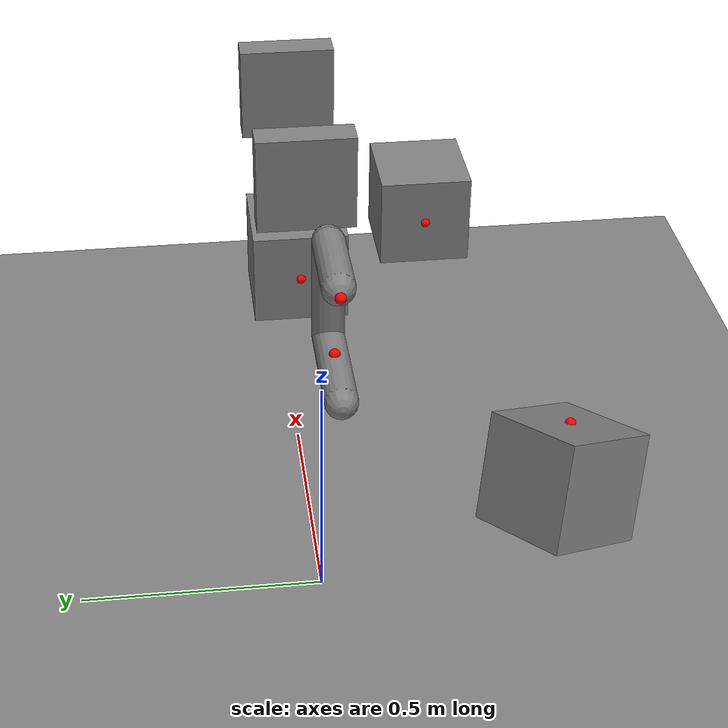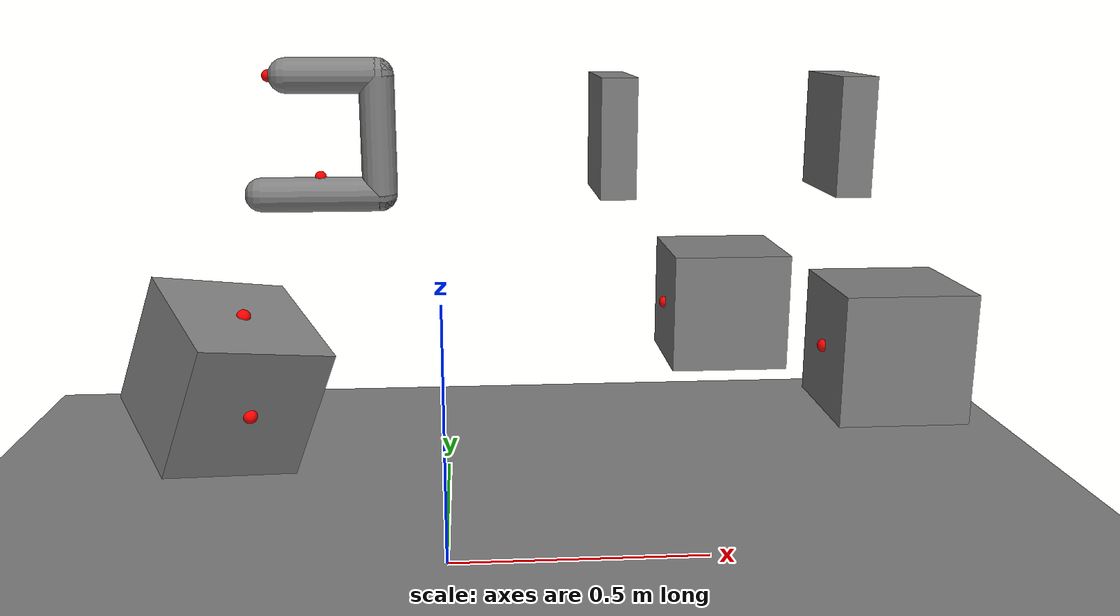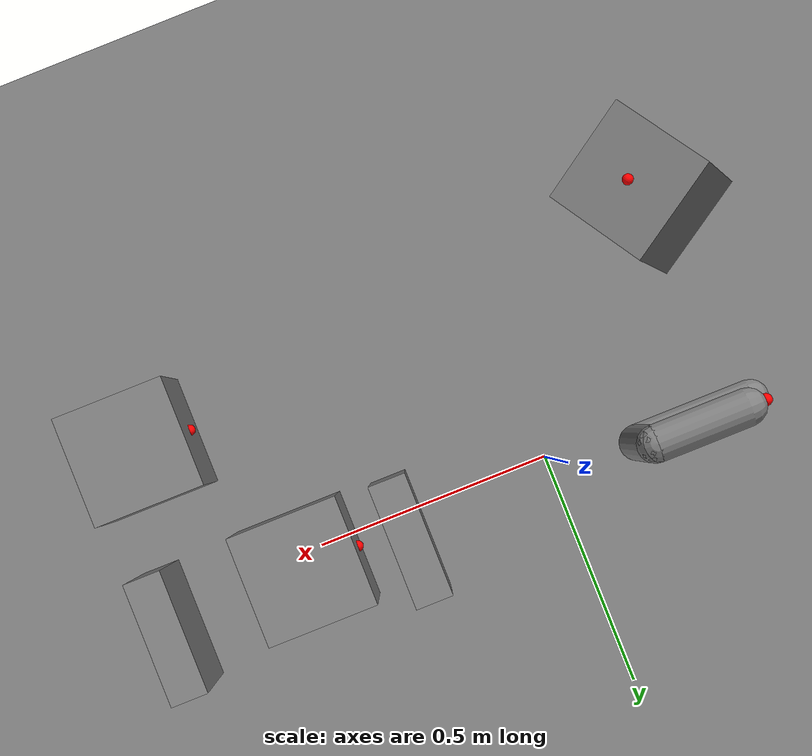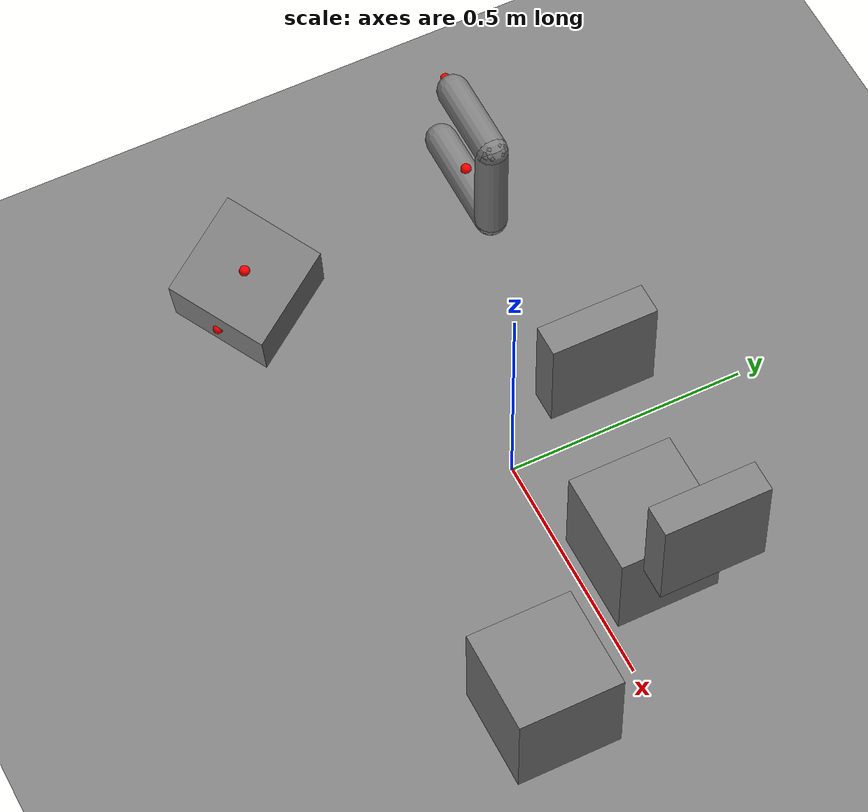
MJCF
<mujoco>
  <option>
    <flag sleep="enable"/>
  </option>

  <worldbody>
    <light pos="0 -1 4"/>
    <geom type="plane" size="1.5 1.5 .01"/>

    <body pos=".3 0 .8">
      <joint name="1" axis="1 0 0" damping=".1"/>
      <geom type="box" size=".03 .1 .1"/>
    </body>

    <body pos=".7 0 .8">
      <joint name="2" axis="1 0 0" damping=".1"/>
      <geom type="box" size=".03 .1 .1"/>
    </body>

    <body pos=".5 0 .5">
      <geom type="box" size=".1 .1 .1"/>
      <site name="1" pos="-.1 0 0" size=".01" rgba="1 0 0 1"/>
    </body>

    <body pos="-.3 -.4 .5" euler="10 20 30">
      <freejoint/>
      <geom type="box" size=".1 .1 .1"/>
      <site name="2" pos="0 0 .1" size=".01" rgba="1 0 0 1" euler="0 -90 0"/>
      <site name="3" pos="0 -.1 0" size=".01" rgba="1 0 0 1" euler="0 0 -90"/>
    </body>

    <body pos=".7 -.3 .5">
      <freejoint/>
      <geom type="box" size=".1 .1 .1"/>
      <site name="4" pos="-.1 0 0" size=".01" rgba="1 0 0 1"/>
    </body>

    <body pos="-.3 0 .7">
      <joint axis="0 1 0" springdamper=".03 1"/>
      <geom type="capsule" size=".03" fromto="0 0 0 .2 0 0"/>
      <site name="5" pos=".1 0 .03" size=".01" rgba="1 0 0 1"/>
      <body pos=".2 0 0">
        <joint axis="0 1 0" springdamper=".03 1"/>
        <geom type="capsule" size=".03" fromto="0 0 0 0 0 .2"/>
        <body pos="0 0 .2">
          <joint axis="0 1 0" springdamper=".03 1"/>
          <geom type="capsule" size=".03" fromto="0 0 0 -.15 0 0"/>
          <site name="6" pos="-.18 0 0" size=".01" rgba="1 0 0 1"/>
        </body>
      </body>
    </body>
  </worldbody>

  <equality>
    <weld active="false" name="stat/dyn" site1="1" site2="2"/>
    <weld active="false" name="dyn/dyn" site1="3" site2="4"/>
    <connect active="false" name="self" site1="5" site2="6"/>
    <joint name="joint" joint1="1" joint2="2" polycoef="0 -2"/>
  </equality>
</mujoco>
